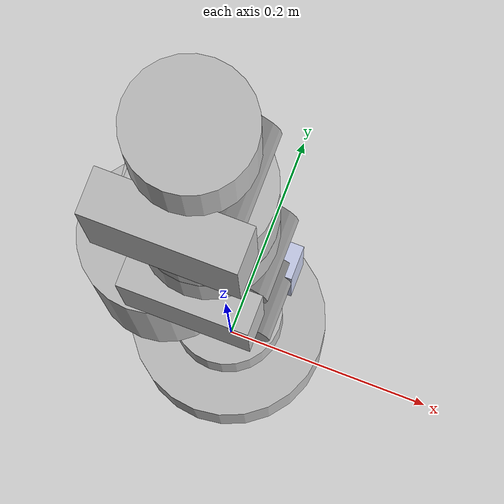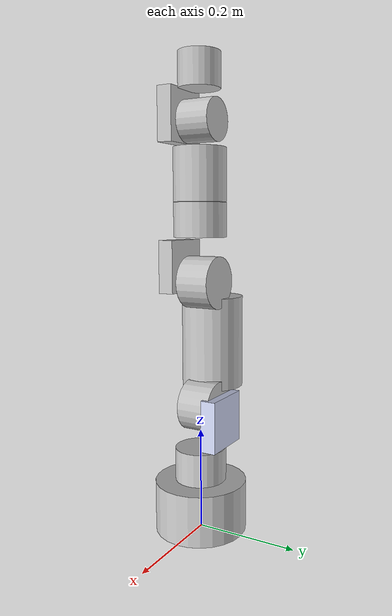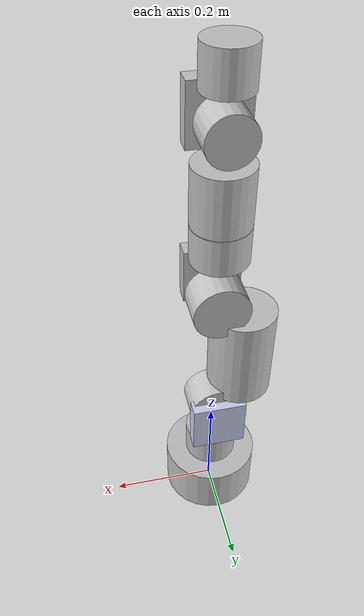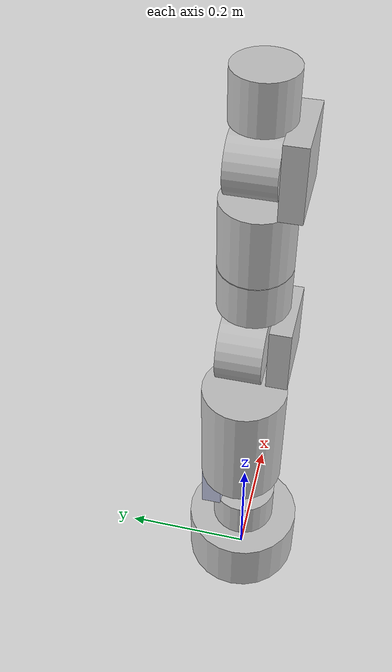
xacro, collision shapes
<?xml version="1.0"?>
<robot xmlns:xacro="http://wiki.ros.org/xacro"
       name="igus_rebel" >
  <xacro:arg name="hardware_protocol" default="rebel"/>
  <!-- igus_rebel -->
  <xacro:include filename="$(find igus_rebel_description)/urdf/igus_rebel2.urdf" />

  <xacro:include filename="$(find igus_rebel_description)/urdf/igus_rebel2.control.xacro"/>
  <xacro:igus_rebel_control arm_id="rebel_arm" hardware_protocol="$(arg hardware_protocol)"/>

  <link name="world" />

  <joint name="world_joint" type="fixed">
    <parent link="world" />
    <child link = "base_link" />
    <origin xyz="0.0 0.0 0.0" rpy="0.0 0.0 0.0" />
  </joint>

</robot>

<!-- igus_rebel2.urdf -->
<robot
  name="igus_rebel">
  <link
    name="base_link">
    <inertial>
      <origin
        xyz="-0.0011101 -0.00059494 0.040917"
        rpy="0 0 0" />
      <mass
        value="4.2944" />
      <inertia
        ixx="0.098117"
        ixy="4.4465E-07"
        ixz="3.3605E-05"
        iyy="0.086593"
        iyz="-1.8837E-06"
        izz="0.12838" />
    </inertial>
    <visual>
      <origin
        xyz="0 0 0"
        rpy="0 0 0" />
      <geometry>
        <mesh
          filename="file://$(find igus_rebel_description)/meshes/robolink_rebel2/base_link.stl" />
      </geometry>
      <material
        name="">
        <color
          rgba="0.75294 0.75294 0.75294 1" />
      </material>
    </visual>
    <collision>
      <origin
        xyz="0 0 0.05"
        rpy="0 0 0" />
      <geometry>
        <cylinder radius="0.09" length="0.1"/>
      </geometry>
    </collision>
  </link>
  <link
    name="motor1">
    <inertial>
      <origin
        xyz="0.00015243 0.00010812 -0.014668"
        rpy="0 0 0" />
      <mass
        value="2" />
      <inertia
        ixx="0.024041"
        ixy="8.3398E-08"
        ixz="-7.2533E-07"
        iyy="0.024081"
        iyz="-6.2967E-07"
        izz="0.037427" />
    </inertial>
    <visual>
      <origin
        xyz="0 0 0"
        rpy="0 0 0" />
      <geometry>
        <mesh
          filename="file://$(find igus_rebel_description)/meshes/robolink_rebel2/motor1.stl" />
      </geometry>
      <material
        name="">
        <color
          rgba="0.75294 0.75294 0.75294 1" />
      </material>
    </visual>
    <collision>
      <origin
        xyz="0 0 -0.0125"
        rpy="0 0 0" />
      <geometry>
        <cylinder radius="0.05" length="0.065"/>
      </geometry>
    </collision>
  </link>
  <joint
    name="J_motor1"
    type="fixed">
    <origin
      xyz="0 0 0.1462"
      rpy="0 0 3.1416" />
    <parent
      link="base_link" />
    <child
      link="motor1" />
    <axis
      xyz="0 0 0" />
  </joint>
  <link
    name="link1">
    <inertial>
      <origin
        xyz="2.5064E-06 -0.031151 0.06301"
        rpy="0 0 0" />
      <mass
        value="1.9246" />
      <inertia
        ixx="0.046865"
        ixy="-3.7969E-09"
        ixz="5.1665E-09"
        iyy="0.04904"
        iyz="0.00010721"
        izz="0.030611" />
    </inertial>
    <visual>
      <origin
        xyz="0 0 0"
        rpy="0 0 0" />
      <geometry>
        <mesh
          filename="file://$(find igus_rebel_description)/meshes/robolink_rebel2/link1.stl" />
      </geometry>
      <material
        name="">
        <color
          rgba="0.79216 0.81961 0.93333 1" />
      </material>
    </visual>
    <collision>
      <origin
        xyz="0 -0.045 0.08"
        rpy="0 0 0" />
      <geometry>
        <box size="0.1 0.03 0.1"/>
      </geometry>
    </collision>
  </link>
  <joint
    name="joint1"
    type="revolute">
    <origin
      xyz="0 0 0"
      rpy="0 0 0" />
    <parent
      link="motor1" />
    <child
      link="link1" />
    <axis
      xyz="0 0 1" />
    <limit
      lower="-3.1241"
      upper="3.1241"
      effort="330"
      velocity="2.16" />
    <dynamics
      damping="0.0"
      friction="0.0" />
  </joint>
  <link
    name="motor2">
    <inertial>
      <origin
        xyz="0.00015243 0.014668 0.00010812"
        rpy="0 0 0" />
      <mass
        value="2" />
      <inertia
        ixx="0.024041"
        ixy="7.2533E-07"
        ixz="8.3398E-08"
        iyy="0.037427"
        iyz="6.2967E-07"
        izz="0.024081" />
    </inertial>
    <visual>
      <origin
        xyz="0 0 0"
        rpy="0 0 0" />
      <geometry>
        <mesh
          filename="file://$(find igus_rebel_description)/meshes/robolink_rebel2/motor2.stl" />
      </geometry>
      <material
        name="">
        <color
          rgba="0.75294 0.75294 0.75294 1" />
      </material>
    </visual>
    <collision>
      <origin
        xyz="0 0.0125 0"
        rpy="1.57079 0 0" />
      <geometry>
        <cylinder radius="0.05" length="0.065"/>
      </geometry>
    </collision>
  </link>
  <joint
    name="J_motor2"
    type="fixed">
    <origin
      xyz="0 -0.0225000000000001 0.106"
      rpy="0 0 0" />
    <parent
      link="link1" />
    <child
      link="motor2" />
    <axis
      xyz="0 0 0" />
  </joint>
  <link
    name="link2">
    <inertial>
      <origin
        xyz="0.023424 0.025337 0.10782"
        rpy="0 0 0" />
      <mass
        value="5.689" />
      <inertia
        ixx="0.1162"
        ixy="-2.0164E-11"
        ixz="-0.00018569"
        iyy="0.10155"
        iyz="5.9595E-10"
        izz="0.08965" />
    </inertial>
    <visual>
      <origin
        xyz="0 0 0"
        rpy="0 0 0" />
      <geometry>
        <mesh
          filename="file://$(find igus_rebel_description)/meshes/robolink_rebel2/link2.stl" />
      </geometry>
      <material
        name="">
        <color
          rgba="0.75294 0.75294 0.75294 1" />
      </material>
    </visual>
    <collision>
      <origin
        xyz="0.05 -0.025 0.12"
        rpy="0 0 0" />
      <geometry>
        <cylinder radius="0.06" length="0.18"/>
      </geometry>
    </collision>
  </link>
  <joint
    name="joint2"
    type="revolute">
    <origin
      xyz="0 0.049 0"
      rpy="0 0 0" />
    <parent
      link="motor2" />
    <child
      link="link2" />
    <axis
      xyz="0 -1 0" />
    <limit
      lower="-1.4835"
      upper="2.4435"
      effort="330"
      velocity="2.16" />
    <dynamics
      damping="0.0"
      friction="0.0" />
  </joint>
  <link
    name="motor3">
    <inertial>
      <origin
        xyz="0.00015243 0.014668 0.00010812"
        rpy="0 0 0" />
      <mass
        value="2.0785" />
      <inertia
        ixx="0.024041"
        ixy="7.2533E-07"
        ixz="8.3398E-08"
        iyy="0.037427"
        iyz="6.2967E-07"
        izz="0.024081" />
    </inertial>
    <visual>
      <origin
        xyz="0 0 0"
        rpy="0 0 0" />
      <geometry>
        <mesh
          filename="file://$(find igus_rebel_description)/meshes/robolink_rebel2/motor3.stl" />
      </geometry>
      <material
        name="">
        <color
          rgba="0.75294 0.75294 0.75294 1" />
      </material>
    </visual>
    <collision>
      <origin
        xyz="0 0.0125 0"
        rpy="1.57079 0 0" />
      <geometry>
        <cylinder radius="0.05" length="0.065"/>
      </geometry>
    </collision>
  </link>
  <joint
    name="J_motor3"
    type="fixed">
    <origin
      xyz="0 -0.049 0.24152"
      rpy="0 0 0" />
    <parent
      link="link2" />
    <child
      link="motor3" />
    <axis
      xyz="0 0 0" />
  </joint>
  <link
    name="link3">
    <inertial>
      <origin
        xyz="1.8683E-06 0.030601 0.032537"
        rpy="0 0 0" />
      <mass
        value="2.5429" />
      <inertia
        ixx="0.051458"
        ixy="3.7774E-09"
        ixz="-4.5694E-09"
        iyy="0.057983"
        iyz="0.00010721"
        izz="0.035205" />
    </inertial>
    <visual>
      <origin
        xyz="0 0 0"
        rpy="0 0 0" />
      <geometry>
        <mesh
          filename="file://$(find igus_rebel_description)/meshes/robolink_rebel2/link3.stl" />
      </geometry>
      <material
        name="">
        <color
          rgba="0.75294 0.75294 0.75294 1" />
      </material>
    </visual>
    <collision>
      <origin
        xyz="0 0.045 0.03"
        rpy="0 0 0" />
      <geometry>
        <box size="0.1 0.03 0.1"/>
      </geometry>
    </collision>
  </link>
  <joint
    name="joint3"
    type="revolute">
    <origin
      xyz="0 0.0225 0"
      rpy="0 0 0" />
    <parent
      link="motor3" />
    <child
      link="link3" />
    <axis
      xyz="0 -1 0" />
    <limit
      lower="-1.39626"
      upper="2.61799"
      effort="330"
      velocity="2.16" />
    <dynamics
      damping="0.0"
      friction="0.0" />
  </joint>
  <link
    name="motor4">
    <inertial>
      <origin
        xyz="0.00015243 -0.00010812 0.014668"
        rpy="0 0 0" />
      <mass
        value="2.0785" />
      <inertia
        ixx="0.024041"
        ixy="-8.3398E-08"
        ixz="7.2533E-07"
        iyy="0.024081"
        iyz="-6.2967E-07"
        izz="0.037427" />
    </inertial>
    <visual>
      <origin
        xyz="0 0 0"
        rpy="0 0 0" />
      <geometry>
        <mesh
          filename="file://$(find igus_rebel_description)/meshes/robolink_rebel2/motor4.stl" />
      </geometry>
      <material
        name="">
        <color
          rgba="0.75294 0.75294 0.75294 1" />
      </material>
    </visual>
    <collision>
      <origin
        xyz="0 0 0.0125"
        rpy="0 0 0" />
      <geometry>
        <cylinder radius="0.05" length="0.065"/>
      </geometry>
    </collision>
  </link>
  <joint
    name="J_motor4"
    type="fixed">
    <origin
      xyz="0.0013449814287804 0 0.105479407401356"
      rpy="0 0 0" />
    <parent
      link="link3" />
    <child
      link="motor4" />
    <axis
      xyz="0 0 0" />
  </joint>
  <link
    name="link4">
    <inertial>
      <origin
        xyz="-0.0070458 -0.00089773 0.05185"
        rpy="0 0 0" />
      <mass
        value="2.2059" />
      <inertia
        ixx="0.02402"
        ixy="1.096E-07"
        ixz="2.3983E-05"
        iyy="0.025662"
        iyz="-1.1343E-06"
        izz="0.030673" />
    </inertial>
    <visual>
      <origin
        xyz="0 0 0"
        rpy="0 0 0" />
      <geometry>
        <mesh
          filename="file://$(find igus_rebel_description)/meshes/robolink_rebel2/link4.stl" />
      </geometry>
      <material
        name="">
        <color
          rgba="0.75294 0.75294 0.75294 1" />
      </material>
    </visual>
    <collision>
      <origin
        xyz="0 0 0.044"
        rpy="0 0 0" />
      <geometry>
        <cylinder radius="0.05" length="0.1"/>
      </geometry>
    </collision>
  </link>
  <joint
    name="joint4"
    type="revolute">
    <origin
      xyz="0 0 0.052"
      rpy="0 0 0" />
    <parent
      link="motor4" />
    <child
      link="link4" />
    <axis
      xyz="0 0 1" />
    <limit
      lower="-3.12414"
      upper="3.12414"
      effort="330"
      velocity="2.16" />
    <dynamics
      damping="0.0"
      friction="0.0" />
  </joint>
  <link
    name="motor5">
    <inertial>
      <origin
        xyz="3.9518E-05 0.02054 -0.00015792"
        rpy="0 0 0" />
      <mass
        value="1.3011" />
      <inertia
        ixx="0.010922"
        ixy="3.1358E-08"
        ixz="1.683E-08"
        iyy="0.014448"
        iyz="-3.8659E-08"
        izz="0.010868" />
    </inertial>
    <visual>
      <origin
        xyz="0 0 0"
        rpy="0 0 0" />
      <geometry>
        <mesh
          filename="file://$(find igus_rebel_description)/meshes/robolink_rebel2/motor5.stl" />
      </geometry>
      <material
        name="">
        <color
          rgba="0.75294 0.75294 0.75294 1" />
      </material>
    </visual>
    <collision>
      <origin
        xyz="0 0.0125 0"
        rpy="1.57079 0 0" />
      <geometry>
        <cylinder radius="0.04" length="0.065"/>
      </geometry>
    </collision>
  </link>
  <joint
    name="J_motor5"
    type="fixed">
    <origin
      xyz="0 -0.0182 0.142"
      rpy="0 0 0" />
    <parent
      link="link4" />
    <child
      link="motor5" />
    <axis
      xyz="0 0 0" />
  </joint>
  <link
    name="link5">
    <inertial>
      <origin
        xyz="7.5874E-05 0.022847 0.026585"
        rpy="0 0 0" />
      <mass
        value="0.70922" />
      <inertia
        ixx="0.0091752"
        ixy="-5.1443E-08"
        ixz="-7.751E-09"
        iyy="0.0086093"
        iyz="2.4553E-05"
        izz="0.0079966" />
    </inertial>
    <visual>
      <origin
        xyz="0 0 0"
        rpy="0 0 0" />
      <geometry>
        <mesh
          filename="file://$(find igus_rebel_description)/meshes/robolink_rebel2/link5.stl" />
      </geometry>
      <material
        name="">
        <color
          rgba="0.75294 0.75294 0.75294 1" />
      </material>
    </visual>
    <collision>
      <origin
        xyz="0 0.045 0.01"
        rpy="0 0 0" />
      <geometry>
        <box size="0.1 0.03 0.1"/>
      </geometry>
    </collision>
  </link>
  <joint
    name="joint5"
    type="continuous">
    <origin
      xyz="0 0.0182 0"
      rpy="0 0 0" />
    <parent
      link="motor5" />
    <child
      link="link5" />
    <axis
      xyz="0 -1 0" />
    <limit
      lower="-1.65806"
      upper="1.65806"
      effort="330"
      velocity="2.16" />
    <dynamics
      damping="0.0"
      friction="0.0" />
  </joint>
  <link
    name="link6">
    <inertial>
      <origin
        xyz="-0.00016088 -4.7449E-05 0.021219"
        rpy="0 0 0" />
      <mass
        value="1.2658" />
      <inertia
        ixx="0.010763"
        ixy="-2.2861E-07"
        ixz="-4.9144E-08"
        iyy="0.010792"
        iyz="-2.2502E-08"
        izz="0.014496" />
    </inertial>
    <visual>
      <origin
        xyz="0 0 0"
        rpy="0 0 0" />
      <geometry>
        <mesh
          filename="file://$(find igus_rebel_description)/meshes/robolink_rebel2/link6.stl" />
      </geometry>
      <material
        name="">
        <color
          rgba="0.75294 0.75294 0.75294 1" />
      </material>
    </visual>
    <collision>
      <origin
        xyz="0 0 0.0125"
        rpy="0 0 0" />
      <geometry>
        <cylinder radius="0.04" length="0.065"/>
      </geometry>
    </collision>
  </link>
  <joint
    name="joint6"
    type="revolute">
    <origin
      xyz="0 0 0.0768"
      rpy="0 0 0" />
    <parent
      link="link5" />
    <child
      link="link6" />
    <axis
      xyz="0 0 1" />
    <limit
      lower="-3.12414"
      upper="3.12414"
      effort="330"
      velocity="2.16" />
    <dynamics
      damping="0.0"
      friction="0.0" />
  </joint>
</robot>
